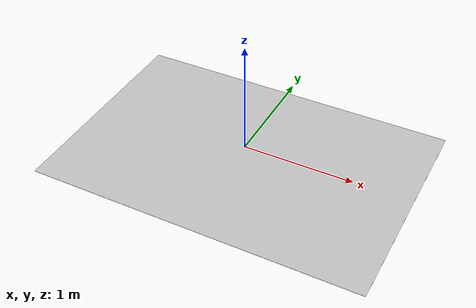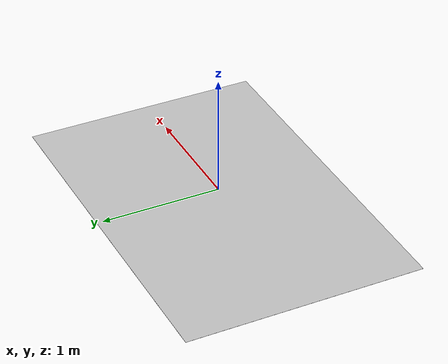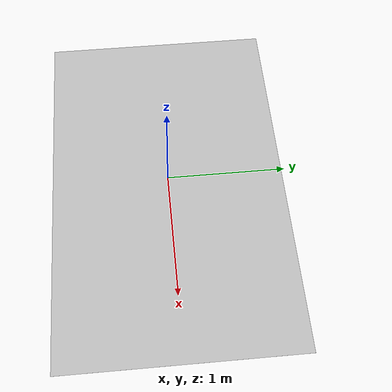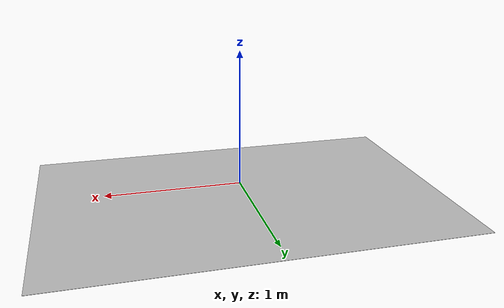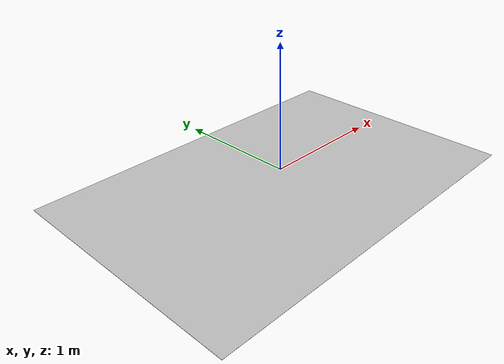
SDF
<sdf version="1.4">
  <world name="track_sample">

    <scene>
      <ambient>0.4 0.4 0.4 1</ambient>
      <background>0.7 0.7 0.7 1</background>
      <shadows>false</shadows>
    </scene>

    <!-- A global light source -->
    <include>
      <uri>model://sun</uri>
    </include>

    <!-- A ground plane -->
    <include>
      <uri>model://track_sample</uri>
    </include>

    <include>
      <uri>model://track_ground</uri>
      <pose>0 0 -0.1 0 0 0</pose>
    </include>

    <physics type="ode">
      <real_time_update_rate>1000.0</real_time_update_rate>
      <max_step_size>0.001</max_step_size>
      <real_time_factor>1</real_time_factor>
      <ode>
        <solver>
          <type>quick</type>
          <iters>150</iters>
          <precon_iters>0</precon_iters>
          <sor>1.400000</sor>
          <use_dynamic_moi_rescaling>1</use_dynamic_moi_rescaling>
        </solver>
        <constraints>
          <cfm>0.00001</cfm>
          <erp>0.2</erp>
          <contact_max_correcting_vel>2000.000000</contact_max_correcting_vel>
          <contact_surface_layer>0.01000</contact_surface_layer>
        </constraints>
      </ode>
    </physics>
  </world>

</sdf>

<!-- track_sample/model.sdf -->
<sdf version="1.5">
    <model name='track_sample'>
        <static>true</static>
        <link name='link_ground'>
            <visual name='visual_ground'>
                <geometry>
                    <plane>
                        <normal>0 0 1</normal>
                        <size>10 10</size>
                    </plane>
                </geometry>
                <material>
                    <script>
                        <uri>model://track_sample/materials/scripts</uri>
                        <uri>model://track_sample/materials/textures</uri>
                        <name>TrackSample/Image</name>
                    </script>
                </material>
            </visual>
            <collision name='collision'>
                <geometry>
                    <plane>
                    <normal>0 0 1</normal>
                    <size>10 10</size>
                    </plane>
                </geometry>
            </collision>
        </link>
    </model>
</sdf>

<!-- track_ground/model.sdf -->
<sdf version="1.6">
  <model name="track_ground">
    <static>true</static>
    <link name="ground_link">
      <visual name="ground_visual">
        <geometry>
          <plane>
            <normal>0 0 1</normal>
            <size>3 2</size>  <!-- 실제 트랙 크기(m) -->
          </plane>
        </geometry>
        <material>
          <script>
            <uri>model://track_ground/materials/scripts</uri>
            <name>Gazebo/TrackMaterial</name>
          </script>
        </material>
      </visual>
      <collision name="ground_collision">
        <geometry>
          <plane>
            <normal>0 0 1</normal>
            <size>3 2</size>
          </plane>
        </geometry>
      </collision>
    </link>
  </model>
</sdf>
